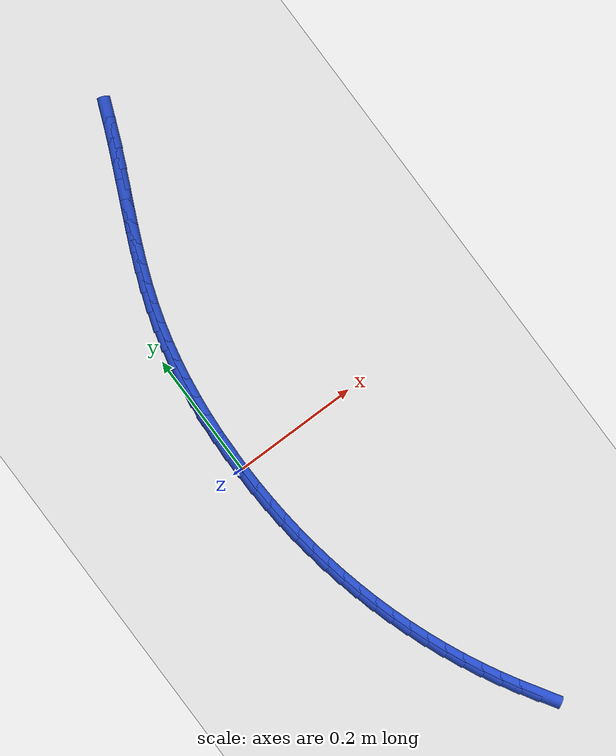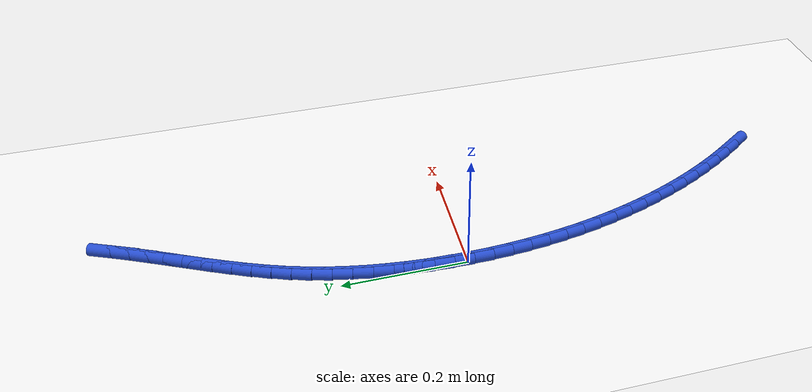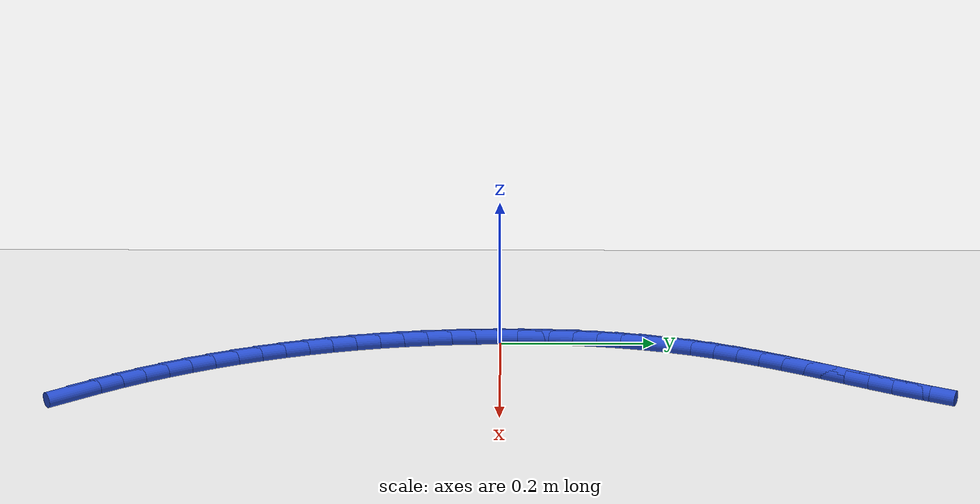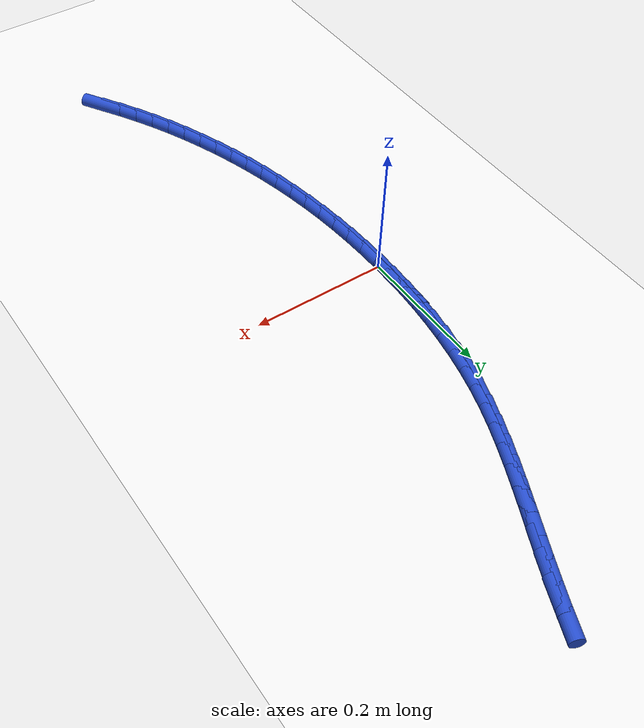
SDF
<sdf version="1.6">
 <world name="default">
  <model name="ground_plane">
   <static>1</static>
   <link name="link">
    <collision name="collision">
     <geometry><plane><normal>0 0 1</normal><size>100 100</size></plane></geometry>
     <surface><friction><ode><mu>100</mu><mu2>50</mu2></ode></friction></surface>
    </collision>
    <visual name="visual">
     <cast_shadows>0</cast_shadows>
     <geometry><plane><normal>0 0 1</normal><size>100 100</size></plane></geometry>
     <material>
      <script><uri>file://media/materials/scripts/gazebo.material</uri><name>Gazebo/WhiteGlow</name></script>
     </material>
    </visual>
   </link>
  </model>
  <model name="line">
   <link name="link_0">
    <pose>4.336808689942018e-19 6.938893903907228e-18 0.01 0 1.57 1.5638558301206333</pose>
    <collision name="collision">
     <geometry><cylinder><radius>0.01</radius><length>0.08</length></cylinder></geometry>
    </collision>
    <visual name="visual">
     <material>
      <script><name>Gazebo/Blue</name><uri>file://media/materials/scripts/gazebo.material</uri></script>
     </material>
     <geometry><cylinder><radius>0.01</radius><length>0.08</length></cylinder></geometry>
    </visual>
   </link>
   <link name="link_1">
    <pose>0.00021747084352891172 0.03133311084658414 0.01 0 1.57 1.534074784540277</pose>
    <collision name="collision">
     <geometry><cylinder><radius>0.01</radius><length>0.08</length></cylinder></geometry>
    </collision>
    <visual name="visual">
     <material>
      <script><name>Gazebo/Blue</name><uri>file://media/materials/scripts/gazebo.material</uri></script>
     </material>
     <geometry><cylinder><radius>0.01</radius><length>0.08</length></cylinder></geometry>
    </visual>
   </link>
   <link name="link_2">
    <pose>0.0013689299974788637 0.06267551823842608 0.01 0 1.57 1.5027086300450436</pose>
    <collision name="collision">
     <geometry><cylinder><radius>0.01</radius><length>0.08</length></cylinder></geometry>
    </collision>
    <visual name="visual">
     <material>
      <script><name>Gazebo/Blue</name><uri>file://media/materials/scripts/gazebo.material</uri></script>
     </material>
     <geometry><cylinder><radius>0.01</radius><length>0.08</length></cylinder></geometry>
    </visual>
   </link>
   <link name="link_3">
    <pose>0.0035018581188638992 0.09395328449566563 0.01 0 1.57 1.469603007563532</pose>
    <collision name="collision">
     <geometry><cylinder><radius>0.01</radius><length>0.08</length></cylinder></geometry>
    </collision>
    <visual name="visual">
     <material>
      <script><name>Gazebo/Blue</name><uri>file://media/materials/scripts/gazebo.material</uri></script>
     </material>
     <geometry><cylinder><radius>0.01</radius><length>0.08</length></cylinder></geometry>
    </visual>
   </link>
   <link name="link_4">
    <pose>0.006663735864698064 0.1250924719384425 0.01 0 1.57 1.434600942110471</pose>
    <collision name="collision">
     <geometry><cylinder><radius>0.01</radius><length>0.08</length></cylinder></geometry>
    </collision>
    <visual name="visual">
     <material>
      <script><name>Gazebo/Blue</name><uri>file://media/materials/scripts/gazebo.material</uri></script>
     </material>
     <geometry><cylinder><radius>0.01</radius><length>0.08</length></cylinder></geometry>
    </visual>
   </link>
   <link name="link_5">
    <pose>0.010902043891995394 0.15601914288689644 0.01 0 1.57 1.3975449276549539</pose>
    <collision name="collision">
     <geometry><cylinder><radius>0.01</radius><length>0.08</length></cylinder></geometry>
    </collision>
    <visual name="visual">
     <material>
      <script><name>Gazebo/Blue</name><uri>file://media/materials/scripts/gazebo.material</uri></script>
     </material>
     <geometry><cylinder><radius>0.01</radius><length>0.08</length></cylinder></geometry>
    </visual>
   </link>
   <link name="link_6">
    <pose>0.01626426285776994 0.1866593596611673 0.01 0 1.57 1.358280115290656</pose>
    <collision name="collision">
     <geometry><cylinder><radius>0.01</radius><length>0.08</length></cylinder></geometry>
    </collision>
    <visual name="visual">
     <material>
      <script><name>Gazebo/Blue</name><uri>file://media/materials/scripts/gazebo.material</uri></script>
     </material>
     <geometry><cylinder><radius>0.01</radius><length>0.08</length></cylinder></geometry>
    </visual>
   </link>
   <link name="link_7">
    <pose>0.02279787341903574 0.2169391845813948 0.01 0 1.57 1.3166588308119376</pose>
    <collision name="collision">
     <geometry><cylinder><radius>0.01</radius><length>0.08</length></cylinder></geometry>
    </collision>
    <visual name="visual">
     <material>
      <script><name>Gazebo/Blue</name><uri>file://media/materials/scripts/gazebo.material</uri></script>
     </material>
     <geometry><cylinder><radius>0.01</radius><length>0.08</length></cylinder></geometry>
    </visual>
   </link>
   <link name="link_8">
    <pose>0.03055035623280683 0.24678467996771866 0.01 0 1.57 1.2728599119492168</pose>
    <collision name="collision">
     <geometry><cylinder><radius>0.01</radius><length>0.08</length></cylinder></geometry>
    </collision>
    <visual name="visual">
     <material>
      <script><name>Gazebo/Blue</name><uri>file://media/materials/scripts/gazebo.material</uri></script>
     </material>
     <geometry><cylinder><radius>0.01</radius><length>0.08</length></cylinder></geometry>
    </visual>
   </link>
   <link name="link_9">
    <pose>0.03956111107013749 0.27612834738416225 0.01 0 1.57 1.231723698355262</pose>
    <collision name="collision">
     <geometry><cylinder><radius>0.01</radius><length>0.08</length></cylinder></geometry>
    </collision>
    <visual name="visual">
     <material>
      <script><name>Gazebo/Blue</name><uri>file://media/materials/scripts/gazebo.material</uri></script>
     </material>
     <geometry><cylinder><radius>0.01</radius><length>0.08</length></cylinder></geometry>
    </visual>
   </link>
   <link name="link_10">
    <pose>0.04974472167913721 0.30500214788672947 0.01 0 1.57 1.1973449721834324</pose>
    <collision name="collision">
     <geometry><cylinder><radius>0.01</radius><length>0.08</length></cylinder></geometry>
    </collision>
    <visual name="visual">
     <material>
      <script><name>Gazebo/Blue</name><uri>file://media/materials/scripts/gazebo.material</uri></script>
     </material>
     <geometry><cylinder><radius>0.01</radius><length>0.08</length></cylinder></geometry>
    </visual>
   </link>
   <link name="link_11">
    <pose>0.06091765256214658 0.3335162287298585 0.01 0 1.57 1.1700421164314696</pose>
    <collision name="collision">
     <geometry><cylinder><radius>0.01</radius><length>0.08</length></cylinder></geometry>
    </collision>
    <visual name="visual">
     <material>
      <script><name>Gazebo/Blue</name><uri>file://media/materials/scripts/gazebo.material</uri></script>
     </material>
     <geometry><cylinder><radius>0.01</radius><length>0.08</length></cylinder></geometry>
    </visual>
   </link>
   <link name="link_12">
    <pose>0.07289372381613075 0.3617828443591079 0.01 0 1.57 1.1498981333934843</pose>
    <collision name="collision">
     <geometry><cylinder><radius>0.01</radius><length>0.08</length></cylinder></geometry>
    </collision>
    <visual name="visual">
     <material>
      <script><name>Gazebo/Blue</name><uri>file://media/materials/scripts/gazebo.material</uri></script>
     </material>
     <geometry><cylinder><radius>0.01</radius><length>0.08</length></cylinder></geometry>
    </visual>
   </link>
   <link name="link_13">
    <pose>0.08548675553805478 0.3899142492200359 0.01 0 1.57 1.1369031177951912</pose>
    <collision name="collision">
     <geometry><cylinder><radius>0.01</radius><length>0.08</length></cylinder></geometry>
    </collision>
    <visual name="visual">
     <material>
      <script><name>Gazebo/Blue</name><uri>file://media/materials/scripts/gazebo.material</uri></script>
     </material>
     <geometry><cylinder><radius>0.01</radius><length>0.08</length></cylinder></geometry>
    </visual>
   </link>
   <link name="link_14">
    <pose>0.09851056782488385 0.4180226977582014 0.01 0 1.57 1.1309861143780788</pose>
    <collision name="collision">
     <geometry><cylinder><radius>0.01</radius><length>0.08</length></cylinder></geometry>
    </collision>
    <visual name="visual">
     <material>
      <script><name>Gazebo/Blue</name><uri>file://media/materials/scripts/gazebo.material</uri></script>
     </material>
     <geometry><cylinder><radius>0.01</radius><length>0.08</length></cylinder></geometry>
    </visual>
   </link>
   <link name="link_15">
    <pose>0.11177898077358299 0.4462204444191626 0.01 0 1.57 1.132036569856538</pose>
    <collision name="collision">
     <geometry><cylinder><radius>0.01</radius><length>0.08</length></cylinder></geometry>
    </collision>
    <visual name="visual">
     <material>
      <script><name>Gazebo/Blue</name><uri>file://media/materials/scripts/gazebo.material</uri></script>
     </material>
     <geometry><cylinder><radius>0.01</radius><length>0.08</length></cylinder></geometry>
    </visual>
   </link>
   <link name="link_16">
    <pose>0.12510581448111738 0.47461974364847814 0.01 0 1.57 1.139915007107813</pose>
    <collision name="collision">
     <geometry><cylinder><radius>0.01</radius><length>0.08</length></cylinder></geometry>
    </collision>
    <visual name="visual">
     <material>
      <script><name>Gazebo/Blue</name><uri>file://media/materials/scripts/gazebo.material</uri></script>
     </material>
     <geometry><cylinder><radius>0.01</radius><length>0.08</length></cylinder></geometry>
    </visual>
   </link>
   <link name="link_17">
    <pose>0.1383048890444521 0.5033328498917065 0.01 0 1.57 1.1544536528687406</pose>
    <collision name="collision">
     <geometry><cylinder><radius>0.01</radius><length>0.08</length></cylinder></geometry>
    </collision>
    <visual name="visual">
     <material>
      <script><name>Gazebo/Blue</name><uri>file://media/materials/scripts/gazebo.material</uri></script>
     </material>
     <geometry><cylinder><radius>0.01</radius><length>0.08</length></cylinder></geometry>
    </visual>
   </link>
   <link name="link_18">
    <pose>0.15119002456055225 0.532472017594406 0.01 0 1.57 1.1741188254078128</pose>
    <collision name="collision">
     <geometry><cylinder><radius>0.01</radius><length>0.08</length></cylinder></geometry>
    </collision>
    <visual name="visual">
     <material>
      <script><name>Gazebo/Blue</name><uri>file://media/materials/scripts/gazebo.material</uri></script>
     </material>
     <geometry><cylinder><radius>0.01</radius><length>0.08</length></cylinder></geometry>
    </visual>
   </link>
   <link name="link_222">
    <pose>0.15318679968069204 -0.5312572971754351 0.01 0 1.57 -1.0166155424908625</pose>
    <collision name="collision">
     <geometry><cylinder><radius>0.01</radius><length>0.08</length></cylinder></geometry>
    </collision>
    <visual name="visual">
     <material>
      <script><name>Gazebo/Blue</name><uri>file://media/materials/scripts/gazebo.material</uri></script>
     </material>
     <geometry><cylinder><radius>0.01</radius><length>0.08</length></cylinder></geometry>
    </visual>
   </link>
   <link name="link_223">
    <pose>0.13688199969391424 -0.504911315389515 0.01 0 1.57 -1.0502825356636523</pose>
    <collision name="collision">
     <geometry><cylinder><radius>0.01</radius><length>0.08</length></cylinder></geometry>
    </collision>
    <visual name="visual">
     <material>
      <script><name>Gazebo/Blue</name><uri>file://media/materials/scripts/gazebo.material</uri></script>
     </material>
     <geometry><cylinder><radius>0.01</radius><length>0.08</length></cylinder></geometry>
    </visual>
   </link>
   <link name="link_224">
    <pose>0.12144961898531396 -0.47799018966555734 0.01 0 1.57 -1.0842039029533925</pose>
    <collision name="collision">
     <geometry><cylinder><radius>0.01</radius><length>0.08</length></cylinder></geometry>
    </collision>
    <visual name="visual">
     <material>
      <script><name>Gazebo/Blue</name><uri>file://media/materials/scripts/gazebo.material</uri></script>
     </material>
     <geometry><cylinder><radius>0.01</radius><length>0.08</length></cylinder></geometry>
    </visual>
   </link>
   <link name="link_225">
    <pose>0.10691464939257492 -0.45051486498679755 0.01 0 1.57 -1.1175381557446864</pose>
    <collision name="collision">
     <geometry><cylinder><radius>0.01</radius><length>0.08</length></cylinder></geometry>
    </collision>
    <visual name="visual">
     <material>
      <script><name>Gazebo/Blue</name><uri>file://media/materials/scripts/gazebo.material</uri></script>
     </material>
     <geometry><cylinder><radius>0.01</radius><length>0.08</length></cylinder></geometry>
    </visual>
   </link>
   <link name="link_226">
    <pose>0.09328436466929371 -0.42253118919873955 0.01 0 1.57 -1.1503522794072087</pose>
    <collision name="collision">
     <geometry><cylinder><radius>0.01</radius><length>0.08</length></cylinder></geometry>
    </collision>
    <visual name="visual">
     <material>
      <script><name>Gazebo/Blue</name><uri>file://media/materials/scripts/gazebo.material</uri></script>
     </material>
     <geometry><cylinder><radius>0.01</radius><length>0.08</length></cylinder></geometry>
    </visual>
   </link>
   <link name="link_227">
    <pose>0.08056597100530732 -0.3940851051081146 0.01 0 1.57 -1.1827183431448771</pose>
    <collision name="collision">
     <geometry><cylinder><radius>0.01</radius><length>0.08</length></cylinder></geometry>
    </collision>
    <visual name="visual">
     <material>
      <script><name>Gazebo/Blue</name><uri>file://media/materials/scripts/gazebo.material</uri></script>
     </material>
     <geometry><cylinder><radius>0.01</radius><length>0.08</length></cylinder></geometry>
    </visual>
   </link>
   <link name="link_228">
    <pose>0.0687666745904527 -0.365222555521654 0.01 0 1.57 -1.2147097669797293</pose>
    <collision name="collision">
     <geometry><cylinder><radius>0.01</radius><length>0.08</length></cylinder></geometry>
    </collision>
    <visual name="visual">
     <material>
      <script><name>Gazebo/Blue</name><uri>file://media/materials/scripts/gazebo.material</uri></script>
     </material>
     <geometry><cylinder><radius>0.01</radius><length>0.08</length></cylinder></geometry>
    </visual>
   </link>
   <link name="link_229">
    <pose>0.057893681614566844 -0.3359894832460888 0.01 0 1.57 -1.2464011032698499</pose>
    <collision name="collision">
     <geometry><cylinder><radius>0.01</radius><length>0.08</length></cylinder></geometry>
    </collision>
    <visual name="visual">
     <material>
      <script><name>Gazebo/Blue</name><uri>file://media/materials/scripts/gazebo.material</uri></script>
     </material>
     <geometry><cylinder><radius>0.01</radius><length>0.08</length></cylinder></geometry>
    </visual>
   </link>
   <link name="link_230">
    <pose>0.04795419826748642 -0.3064318310881495 0.01 0 1.57 -1.2778679057410531</pose>
    <collision name="collision">
     <geometry><cylinder><radius>0.01</radius><length>0.08</length></cylinder></geometry>
    </collision>
    <visual name="visual">
     <material>
      <script><name>Gazebo/Blue</name><uri>file://media/materials/scripts/gazebo.material</uri></script>
     </material>
     <geometry><cylinder><radius>0.01</radius><length>0.08</length></cylinder></geometry>
    </visual>
   </link>
   <link name="link_231">
    <pose>0.038955430739048946 -0.2765955418545689 0.01 0 1.57 -1.3091843490535124</pose>
    <collision name="collision">
     <geometry><cylinder><radius>0.01</radius><length>0.08</length></cylinder></geometry>
    </collision>
    <visual name="visual">
     <material>
      <script><name>Gazebo/Blue</name><uri>file://media/materials/scripts/gazebo.material</uri></script>
     </material>
     <geometry><cylinder><radius>0.01</radius><length>0.08</length></cylinder></geometry>
    </visual>
   </link>
   <link name="link_232">
    <pose>0.03090441525713712 -0.24652620296901626 0.01 0 1.57 -1.3403260633241403</pose>
    <collision name="collision">
     <geometry><cylinder><radius>0.01</radius><length>0.08</length></cylinder></geometry>
    </collision>
    <visual name="visual">
     <material>
      <script><name>Gazebo/Blue</name><uri>file://media/materials/scripts/gazebo.material</uri></script>
     </material>
     <geometry><cylinder><radius>0.01</radius><length>0.08</length></cylinder></geometry>
    </visual>
   </link>
   <link name="link_233">
    <pose>0.023801881702321948 -0.2162562155569317 0.01 0 1.57 -1.3711808835866433</pose>
    <collision name="collision">
     <geometry><cylinder><radius>0.01</radius><length>0.08</length></cylinder></geometry>
    </collision>
    <visual name="visual">
     <material>
      <script><name>Gazebo/Blue</name><uri>file://media/materials/scripts/gazebo.material</uri></script>
     </material>
     <geometry><cylinder><radius>0.01</radius><length>0.08</length></cylinder></geometry>
    </visual>
   </link>
   <link name="link_234">
    <pose>0.017640537745213195 -0.1858012066512774 0.01 0 1.57 -1.4017197222344304</pose>
    <collision name="collision">
     <geometry><cylinder><radius>0.01</radius><length>0.08</length></cylinder></geometry>
    </collision>
    <visual name="visual">
     <material>
      <script><name>Gazebo/Blue</name><uri>file://media/materials/scripts/gazebo.material</uri></script>
     </material>
     <geometry><cylinder><radius>0.01</radius><length>0.08</length></cylinder></geometry>
    </visual>
   </link>
   <link name="link_235">
    <pose>0.012412571679482367 -0.1551757172904036 0.01 0 1.57 -1.431923435292324</pose>
    <collision name="collision">
     <geometry><cylinder><radius>0.01</radius><length>0.08</length></cylinder></geometry>
    </collision>
    <visual name="visual">
     <material>
      <script><name>Gazebo/Blue</name><uri>file://media/materials/scripts/gazebo.material</uri></script>
     </material>
     <geometry><cylinder><radius>0.01</radius><length>0.08</length></cylinder></geometry>
    </visual>
   </link>
   <link name="link_236">
    <pose>0.008110171798800976 -0.12439428851266057 0.01 0 1.57 -1.461775720268388</pose>
    <collision name="collision">
     <geometry><cylinder><radius>0.01</radius><length>0.08</length></cylinder></geometry>
    </collision>
    <visual name="visual">
     <material>
      <script><name>Gazebo/Blue</name><uri>file://media/materials/scripts/gazebo.material</uri></script>
     </material>
     <geometry><cylinder><radius>0.01</radius><length>0.08</length></cylinder></geometry>
    </visual>
   </link>
   <link name="link_237">
    <pose>0.0047255263968405325 -0.09347146135639854 0.01 0 1.57 -1.4912630714510975</pose>
    <collision name="collision">
     <geometry><cylinder><radius>0.01</radius><length>0.08</length></cylinder></geometry>
    </collision>
    <visual name="visual">
     <material>
      <script><name>Gazebo/Blue</name><uri>file://media/materials/scripts/gazebo.material</uri></script>
     </material>
     <geometry><cylinder><radius>0.01</radius><length>0.08</length></cylinder></geometry>
    </visual>
   </link>
   <link name="link_238">
    <pose>0.0022508237672724937 -0.06242177685996689 0.01 0 1.57 -1.5203747034477337</pose>
    <collision name="collision">
     <geometry><cylinder><radius>0.01</radius><length>0.08</length></cylinder></geometry>
    </collision>
    <visual name="visual">
     <material>
      <script><name>Gazebo/Blue</name><uri>file://media/materials/scripts/gazebo.material</uri></script>
     </material>
     <geometry><cylinder><radius>0.01</radius><length>0.08</length></cylinder></geometry>
    </visual>
   </link>
   <link name="link_239">
    <pose>0.0006782522037685063 -0.03125977606171754 0.01 0 1.57 -1.5491024477851627</pose>
    <collision name="collision">
     <geometry><cylinder><radius>0.01</radius><length>0.08</length></cylinder></geometry>
    </collision>
    <visual name="visual">
     <material>
      <script><name>Gazebo/Blue</name><uri>file://media/materials/scripts/gazebo.material</uri></script>
     </material>
     <geometry><cylinder><radius>0.01</radius><length>0.08</length></cylinder></geometry>
    </visual>
   </link>
   <link name="link_240">
    <pose>0.0 1.3877787807814457e-16 0.01 0 1.57 1.5641520260999573</pose>
    <collision name="collision">
     <geometry><cylinder><radius>0.01</radius><length>0.08</length></cylinder></geometry>
    </collision>
    <visual name="visual">
     <material>
      <script><name>Gazebo/Blue</name><uri>file://media/materials/scripts/gazebo.material</uri></script>
     </material>
     <geometry><cylinder><radius>0.01</radius><length>0.08</length></cylinder></geometry>
    </visual>
   </link>
   <link name="link_241">
    <pose>0.0002082554496384897 0.03134301028683585 0.01 0 1.57 1.536206739111642</pose>
    <collision name="collision">
     <geometry><cylinder><radius>0.01</radius><length>0.08</length></cylinder></geometry>
    </collision>
    <visual name="visual">
     <material>
      <script><name>Gazebo/Blue</name><uri>file://media/materials/scripts/gazebo.material</uri></script>
     </material>
     <geometry><cylinder><radius>0.01</radius><length>0.08</length></cylinder></geometry>
    </visual>
   </link>
   <link name="link_242">
    <pose>0.0012952068463554876 0.0627547137604394 0.01 0 1.57 1.55016006050423</pose>
    <collision name="collision">
     <geometry><cylinder><radius>0.01</radius><length>0.08</length></cylinder></geometry>
    </collision>
    <visual name="visual">
     <material>
      <script><name>Gazebo/Blue</name><uri>file://media/materials/scripts/gazebo.material</uri></script>
     </material>
     <geometry><cylinder><radius>0.01</radius><length>0.08</length></cylinder></geometry>
    </visual>
   </link>
  </model>
 </world>
</sdf>
